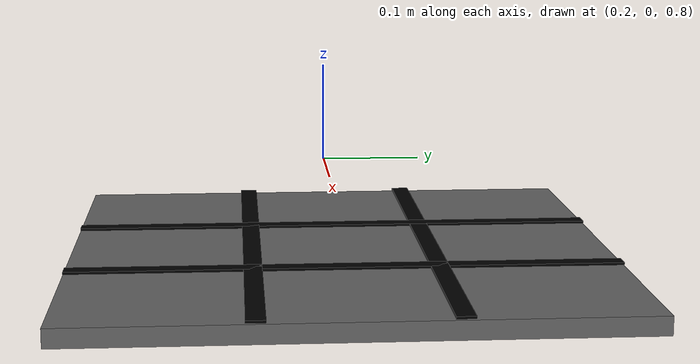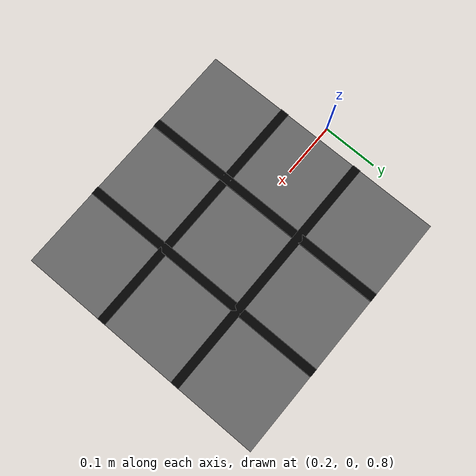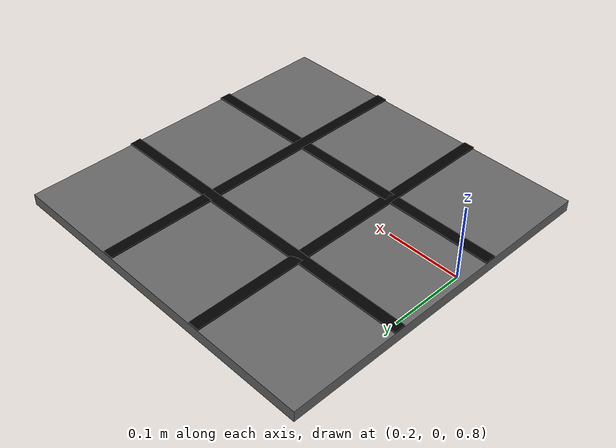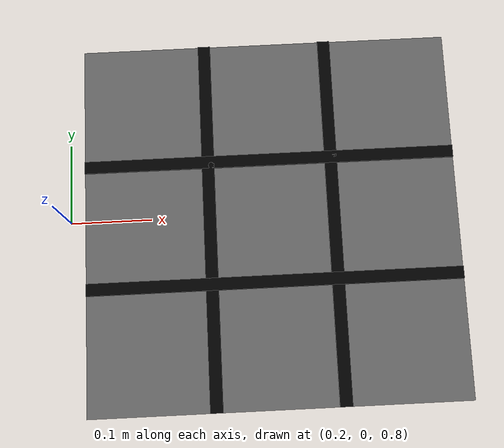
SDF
<?xml version="1.0" ?>
<sdf version="1.6">
  <model name="tictactoe_board">
    <!-- Keep same position, just smaller board -->
    <pose>0.45 0.0 0.75 0 0 0</pose>
    <static>true</static>

    <!-- Board base -->
    <link name="board_base">
      <pose>0 0 0 0 0 0</pose>

      <collision name="collision">
        <geometry>
          <box>
            <size>0.48 0.48 0.016</size> <!-- Reduced from 0.6 to 0.48 -->
          </box>
        </geometry>
      </collision>

      <visual name="board_visual">
        <geometry>
          <box>
            <size>0.48 0.48 0.016</size> <!-- Reduced -->
          </box>
        </geometry>
        <material>
          <ambient>0.3 0.3 0.3 1</ambient>
          <diffuse>0.4 0.4 0.4 1</diffuse>
          <specular>0.1 0.1 0.1 1</specular>
        </material>
        <pose>0 0 0.008 0 0 0</pose>
      </visual>
    </link>

    <!-- Grid lines - adjusted for smaller board -->
    <!-- Vertical lines -->
    <link name="vline1">
      <pose>-0.08 0 0.018 0 0 0</pose>
      <visual name="visual_v1">
        <geometry>
          <box>
            <size>0.016 0.48 0.002</size>
          </box>
        </geometry>
        <material>
          <ambient>0 0 0 1</ambient>
          <diffuse>0 0 0 1</diffuse>
        </material>
      </visual>
    </link>

    <link name="vline2">
      <pose>0.08 0 0.018 0 0 0</pose>
      <visual name="visual_v2">
        <geometry>
          <box>
            <size>0.016 0.48 0.002</size>
          </box>
        </geometry>
        <material>
          <ambient>0 0 0 1</ambient>
          <diffuse>0 0 0 1</diffuse>
        </material>
      </visual>
    </link>

    <!-- Horizontal lines -->
    <link name="hline1">
      <pose>0 -0.08 0.018 0 0 0</pose>
      <visual name="visual_h1">
        <geometry>
          <box>
            <size>0.48 0.016 0.002</size>
          </box>
        </geometry>
        <material>
          <ambient>0 0 0 1</ambient>
          <diffuse>0 0 0 1</diffuse>
        </material>
      </visual>
    </link>

    <link name="hline2">
      <pose>0 0.08 0.018 0 0 0</pose>
      <visual name="visual_h2">
        <geometry>
          <box>
            <size>0.48 0.016 0.002</size>
          </box>
        </geometry>
        <material>
          <ambient>0 0 0 1</ambient>
          <diffuse>0 0 0 1</diffuse>
        </material>
      </visual>
    </link>

  </model>
</sdf>
